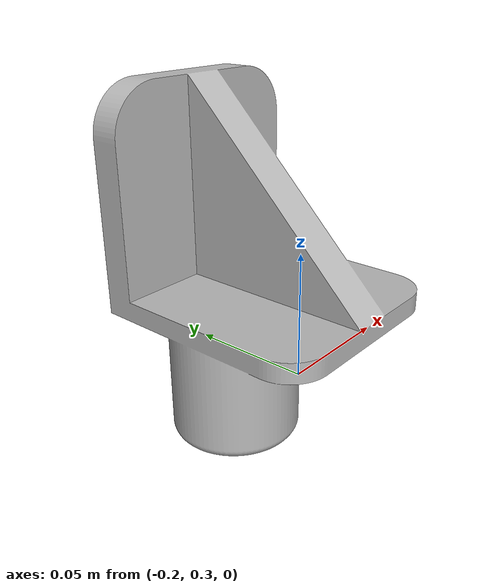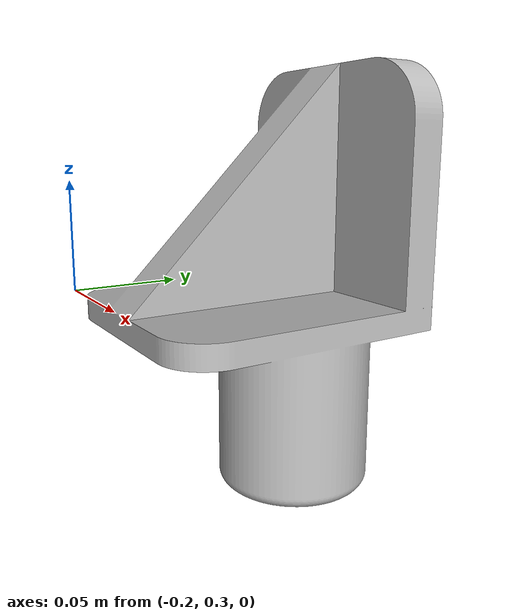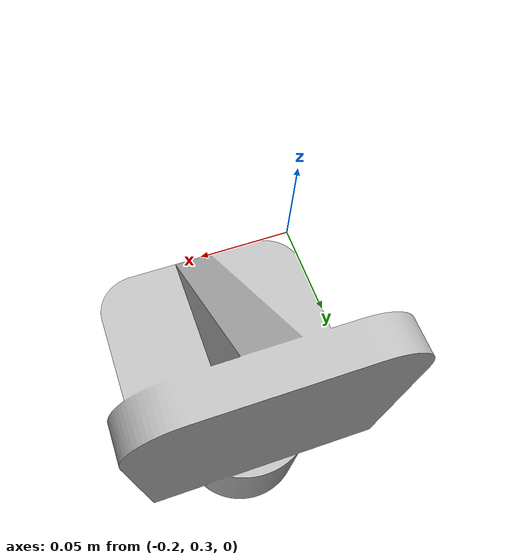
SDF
<?xml version="1.0" ?>
<sdf version="1.7">
  <model name="my_model">
    <static>true</static>
    <link name="link_loooool">
      <collision name="collision">
        <geometry>
          <mesh>
            <uri>model://my_model/meshes/shelf_pin.stl</uri>
            <scalar>0.1 0.1 0.1</scalar>
          </mesh>
        </geometry>
      </collision>
      <visual name="visual">
        <geometry>
          <mesh>
            <uri>model://my_model/meshes/shelf_pin.stl</uri>
            <scale>0.01 0.01 0.01</scale>
          </mesh>
        </geometry>
        <material>
          <script>
            <uri>model://my_model/materials/scripts</uri>
            <uri>model://my_model/materials/textures</uri>
            <name>my_material/Diffuse</name>
          </script>
        </material>
      </visual>
    </link>
  </model>
</sdf>
